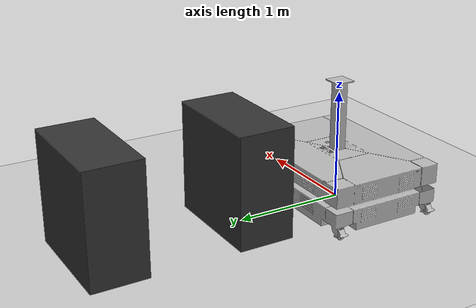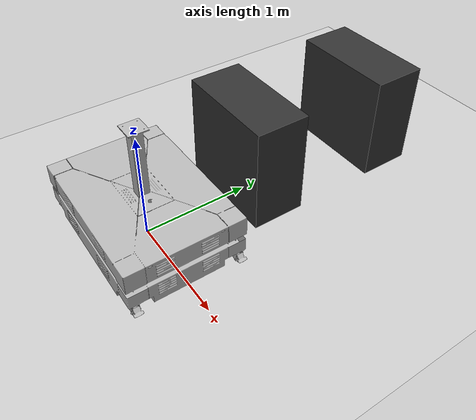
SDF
<sdf version="1.6">
 <world name="default">
  <light name="sun" type="directional">
   <pose>0 0 10 0 -0 0</pose>
   <diffuse>0.8 0.8 0.8 1</diffuse>
   <specular>0.1 0.1 0.1 1</specular>
   <attenuation>
    <range>1000</range>
    <constant>0.9</constant>
    <linear>0.01</linear>
    <quadratic>0.001</quadratic>
   </attenuation>
   <direction>-0.5 0.5 -1</direction>
  </light>
  <model name="ground_plane">
   <static>1</static>
   <link name="link">
    <collision name="collision">
     <geometry><plane><normal>0 0 1</normal><size>100 100</size></plane></geometry>
     <surface><friction><ode><mu>100</mu><mu2>50</mu2></ode></friction></surface>
    </collision>
    <visual name="visual">
     <cast_shadows>0</cast_shadows>
     <geometry><plane><normal>0 0 1</normal><size>100 100</size></plane></geometry>
     <material>
      <script><uri>file://media/materials/scripts/gazebo.material</uri><name>Gazebo/Grey</name></script>
     </material>
    </visual>
   </link>
  </model>
  <gravity>0 0 -9.8</gravity>
  <magnetic_field>6e-06 2.3e-05 -4.2e-05</magnetic_field>
  <atmosphere type="adiabatic"/>
  <physics name="default_physics" default="0" type="ode">
   <max_step_size>0.001</max_step_size>
   <real_time_factor>1</real_time_factor>
   <real_time_update_rate>1000</real_time_update_rate>
  </physics>
  <scene><ambient>0.4 0.4 0.4 1</ambient><background>0.7 0.7 0.7 1</background><shadows>1</shadows></scene>
  <spherical_coordinates>
   <surface_model>EARTH_WGS84</surface_model>
   <latitude_deg>0</latitude_deg>
   <longitude_deg>0</longitude_deg>
   <elevation>0</elevation>
   <heading_deg>0</heading_deg>
  </spherical_coordinates>
  <model name="stand">
   <static>1</static>
   <pose>0 1.7 1.6   1.5708 -0 -3.14159</pose>
   <link name="stand">
    <self_collide>1</self_collide>
    <inertial>
     <mass>10</mass>
     <inertia><ixx>1</ixx><ixy>0</ixy><ixz>0</ixz><iyy>1</iyy><iyz>0</iyz><izz>1</izz></inertia>
    </inertial>
    <collision name="collision1">
     <geometry>
      <mesh>
       <scale>0.001 0.001 0.001</scale>
       <uri>/home/robotics/catkin_ws/src/AI-robot-control/Pickbot/pickbot_simulation/meshes/ur10_research/collision/Pickbot_Schubladenregal_offen.stl</uri>
      </mesh>
     </geometry>
    </collision>
    <visual name="visual1">
     <geometry>
      <mesh>
       <scale>0.001 0.001 0.001</scale>
       <uri>/home/robotics/catkin_ws/src/AI-robot-control/Pickbot/pickbot_simulation/meshes/ur10_research/visual/Pickbot_Schubladenregal_offen.dae</uri>
      </mesh>
     </geometry>
     <material><ambient>0.2 0.2 0.2 1</ambient></material>
    </visual>
   </link>
  </model>
  <model name="stand_store">
   <static>1</static>
   <pose>0 3.0 1.6   1.5708 -0 -3.14159</pose>
   <link name="stand">
    <self_collide>1</self_collide>
    <inertial>
     <mass>10</mass>
     <inertia><ixx>1</ixx><ixy>0</ixy><ixz>0</ixz><iyy>1</iyy><iyz>0</iyz><izz>1</izz></inertia>
    </inertial>
    <collision name="collision1">
     <geometry>
      <mesh>
       <scale>0.001 0.001 0.001</scale>
       <uri>/home/robotics/catkin_ws/src/AI-robot-control/Pickbot/pickbot_simulation/meshes/ur10_research/collision/Pickbot_Schubladenregal_offen.stl</uri>
      </mesh>
     </geometry>
    </collision>
    <visual name="visual1">
     <geometry>
      <mesh>
       <scale>0.001 0.001 0.001</scale>
       <uri>/home/robotics/catkin_ws/src/AI-robot-control/Pickbot/pickbot_simulation/meshes/ur10_research/visual/Pickbot_Schubladenregal_offen.dae</uri>
      </mesh>
     </geometry>
     <material><ambient>0.2 0.2 0.2 1</ambient></material>
    </visual>
   </link>
  </model>
  <model name="Pickbot_Case">
   <static>1</static>
   <link name="Pickbot_Case">
    <self_collide>1</self_collide>
    <inertial>
     <mass>10</mass>
     <inertia><ixx>1</ixx><ixy>0</ixy><ixz>0</ixz><iyy>1</iyy><iyz>0</iyz><izz>1</izz></inertia>
    </inertial>
    <collision name="collision1">
     <geometry>
      <mesh>
       <scale>0.001 0.001 0.001</scale>
       <uri>/home/robotics/catkin_ws/src/AI-robot-control/Pickbot/pickbot_simulation/meshes/ur10_research/collision/Pickbot_Case.stl</uri>
      </mesh>
     </geometry>
    </collision>
    <visual name="visual1">
     <geometry>
      <mesh>
       <scale>0.001 0.001 0.001</scale>
       <uri>/home/robotics/catkin_ws/src/AI-robot-control/Pickbot/pickbot_simulation/meshes/ur10_research/visual/Pickbot_Case.dae</uri>
      </mesh>
     </geometry>
     <material name="White"><color rgba="0.0 0.0 0.0 1.0"/></material>
    </visual>
   </link>
  </model>
 </world>
</sdf>
